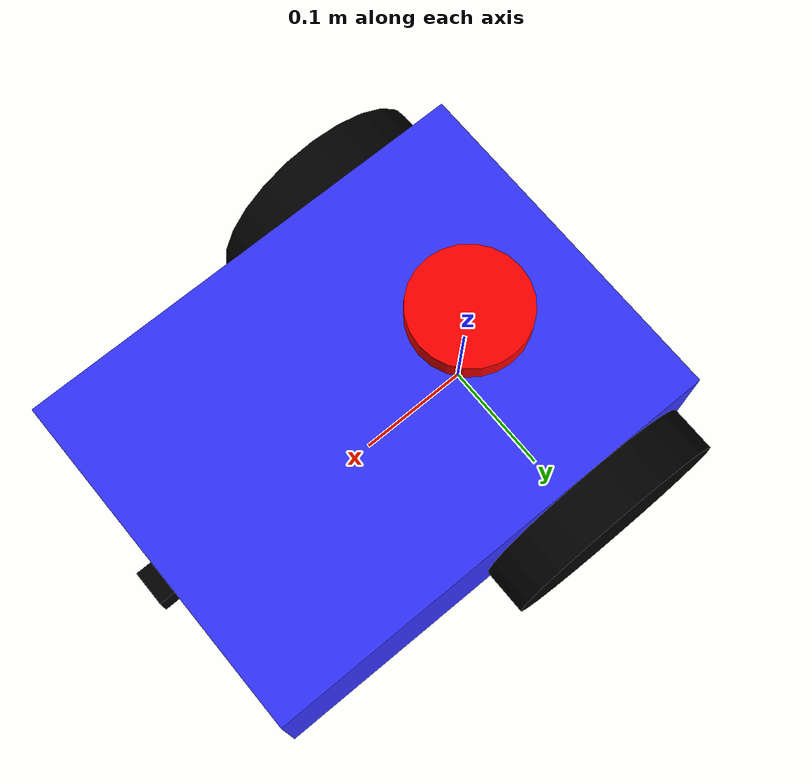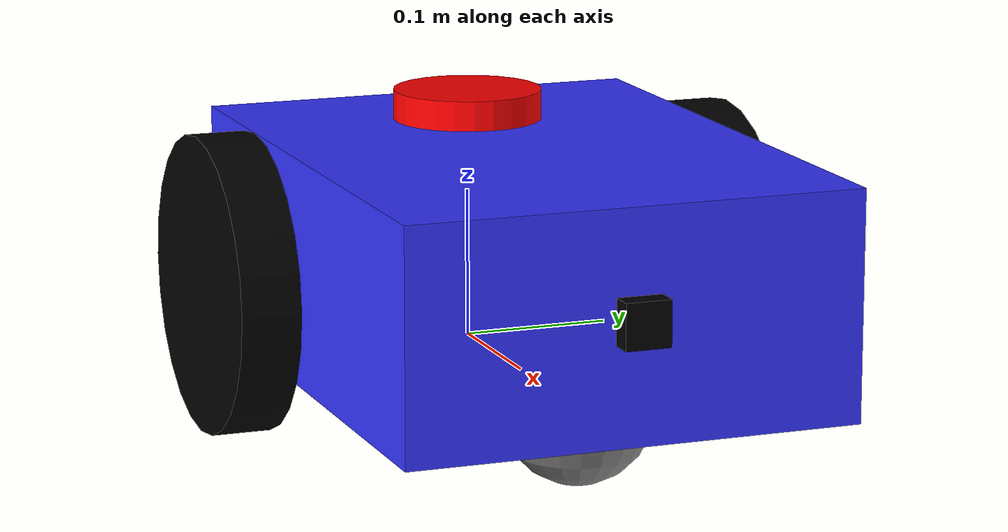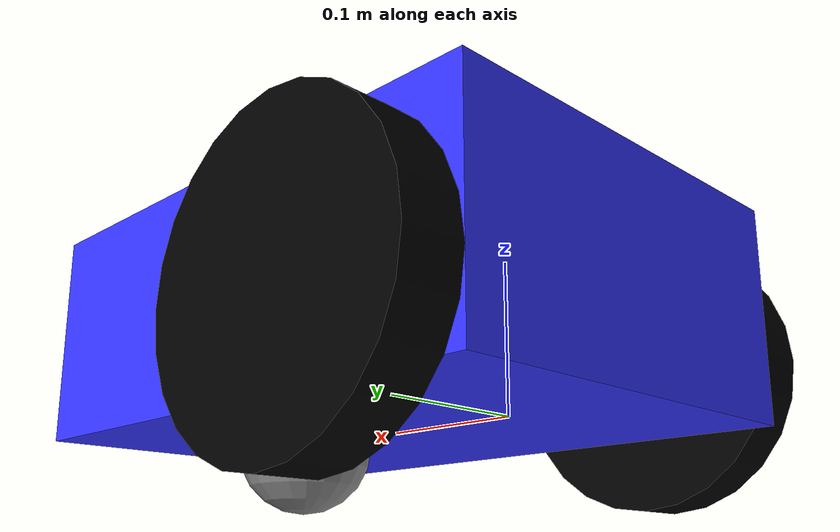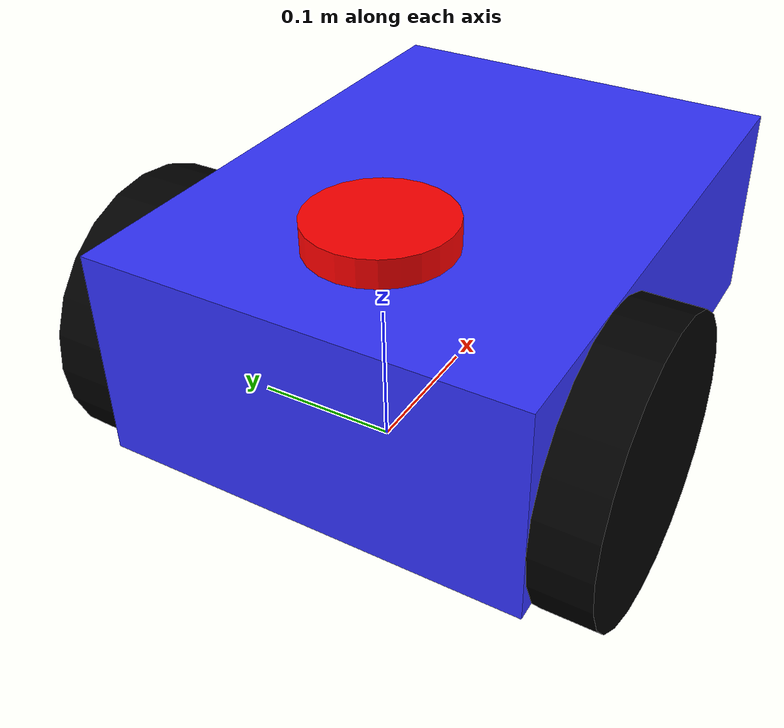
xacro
<?xml version="1.0"?>
<robot xmlns:xacro="http://www.ros.org/wiki/xacro" name="robot_2wd">

  <!-- 1. PEMBOLEHUBAH (PROPERTIES) DIMENSI - DITAKRIFKAN DAHULU -->
  <xacro:property name="chassis_length" value="0.4"/>
  <xacro:property name="chassis_width" value="0.3"/>
  <xacro:property name="chassis_height" value="0.15"/>
  <xacro:property name="wheel_radius" value="0.1"/>
  <xacro:property name="wheel_length" value="0.04"/>
  <xacro:property name="wheel_offset_x" value="0.1"/>
  <xacro:property name="wheel_offset_y" value="0.17"/>
  <xacro:property name="wheel_offset_z" value="0.05"/>

  <!-- 2. MENGIMPORT FAIL MAKRO LAIN - SELEPAS PROPERTIES -->
  <xacro:include filename="inertial_macros.xacro" />
  <xacro:include filename="gazebo.xacro" />
  <xacro:include filename="lidar.xacro" />
  <xacro:include filename="camera.xacro" />

  <!-- 3. BASE LINK (Titik Rujukan Pusat Robot) -->
  <link name="base_link">
    <xacro:inertial_sphere mass="0.001" radius="0.001">
      <origin xyz="0 0 0" rpy="0 0 0"/>
    </xacro:inertial_sphere>
  </link>

  <!-- 4. CHASSIS LINK (Badan Utama Robot) -->
  <joint name="chassis_joint" type="fixed">
    <parent link="base_link"/>
    <child link="chassis"/>
    <origin xyz="-0.10 0 0"/>
  </joint>

  <link name="chassis">
    <visual>
      <origin xyz="${chassis_length/2} 0 ${chassis_height/2}" rpy="0 0 0"/>
      <geometry>
        <box size="${chassis_length} ${chassis_width} ${chassis_height}"/>
      </geometry>
      <material name="blue">
        <color rgba="0.2 0.2 1.0 1.0"/>
      </material>
    </visual>
    <collision>
      <origin xyz="${chassis_length/2} 0 ${chassis_height/2}" rpy="0 0 0"/>
      <geometry>
        <box size="${chassis_length} ${chassis_width} ${chassis_height}"/>
      </geometry>
    </collision>
    <xacro:inertial_box mass="2.5" x="${chassis_length}" y="${chassis_width}" z="${chassis_height}">
      <origin xyz="${chassis_length/2} 0 ${chassis_height/2}" rpy="0 0 0"/>
    </xacro:inertial_box>
  </link>

  <!-- 5. MAKRO UNTUK RODA MEMANDU (KIRI & KANAN) -->
  <xacro:macro name="wheel" params="prefix y_reflect">
    <joint name="${prefix}_wheel_joint" type="continuous">
      <parent link="chassis"/>
      <child link="${prefix}_wheel"/>
      <!-- 🎯 Menetapkan offset z ke 0.05m dan putaran -90 darjah pada paksi X -->
      <origin xyz="${wheel_offset_x} ${y_reflect * wheel_offset_y} ${wheel_offset_z}" rpy="-${pi/2} 0 0"/>
      <axis xyz="0 0 1"/>
    </joint>

    <link name="${prefix}_wheel">
      <visual>
        <geometry>
          <cylinder radius="${wheel_radius}" length="${wheel_length}"/>
        </geometry>
        <material name="black">
          <color rgba="0.0 0.0 0.0 1.0"/>
        </material>
      </visual>
      <collision>
        <geometry>
          <cylinder radius="${wheel_radius}" length="${wheel_length}"/>
        </geometry>
      </collision>
      <xacro:inertial_cylinder mass="0.5" length="${wheel_length}" radius="${wheel_radius}">
        <origin xyz="0 0 0" rpy="0 0 0"/>
      </xacro:inertial_cylinder>
    </link>
  </xacro:macro>

  <xacro:wheel prefix="left" y_reflect="1" />
  <xacro:wheel prefix="right" y_reflect="-1" />

  <!-- 6. CASTER WHEEL (Roda Pasif Penstabil) -->
  <joint name="caster_wheel_joint" type="fixed">
    <parent link="chassis"/>
    <child link="caster_wheel"/>
    <!-- 🎯 Menyelaraskan origin z caster wheel supaya seimbang dengan roda utama -->
    <origin xyz="0.30 0 0" rpy="0 0 0"/>
  </joint>

  <link name="caster_wheel">
    <visual>
      <geometry>
        <sphere radius="0.05"/>
      </geometry>
      <material name="grey">
        <color rgba="0.5 0.5 0.5 1.0"/>
      </material>
    </visual>
    <collision>
      <geometry>
        <sphere radius="0.05"/>
      </geometry>
    </collision>
    <xacro:inertial_sphere mass="0.1" radius="0.05">
      <origin xyz="0 0 0" rpy="0 0 0"/>
    </xacro:inertial_sphere>
  </link>

</robot>

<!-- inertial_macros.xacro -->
<robot xmlns:xacro="http://www.ros.org/wiki/xacro">

  <!-- Makro Inersia Sfera -->
  <xacro:macro name="inertial_sphere" params="mass radius *origin">
    <inertial>
      <xacro:insert_block name="origin"/>
      <mass value="${mass}" />
      <inertia ixx="${(2/5) * mass * radius * radius}" ixy="0.0" ixz="0.0"
               iyy="${(2/5) * mass * radius * radius}" iyz="0.0"
               izz="${(2/5) * mass * radius * radius}" />
    </inertial>
  </xacro:macro>

  <!-- Makro Inersia Kotak (Chassis) -->
  <xacro:macro name="inertial_box" params="mass x y z *origin">
    <inertial>
      <xacro:insert_block name="origin"/>
      <mass value="${mass}" />
      <inertia ixx="${(1/12) * mass * (y*y + z*z)}" ixy="0.0" ixz="0.0"
               iyy="${(1/12) * mass * (x*x + z*z)}" iyz="0.0"
               izz="${(1/12) * mass * (x*x + y*y)}" />
    </inertial>
  </xacro:macro>

  <!-- Makro Inersia Silinder (Roda/Lidar) -->
  <xacro:macro name="inertial_cylinder" params="mass length radius *origin">
    <inertial>
      <xacro:insert_block name="origin"/>
      <mass value="${mass}" />
      <inertia ixx="${(1/12) * mass * (3*radius*radius + length*length)}" ixy="0.0" ixz="0.0"
               iyy="${(1/12) * mass * (3*radius*radius + length*length)}" iyz="0.0"
               izz="${(1/2) * mass * radius * radius}" />
    </inertial>
  </xacro:macro>

</robot>

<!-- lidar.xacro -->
<robot xmlns:xacro="http://www.ros.org/wiki/xacro">

  <!-- 1. SENDI LIDAR (Diletakkan tepat di atas chassis) -->
  <joint name="laser_joint" type="fixed">
    <parent link="chassis"/>
    <child link="laser_frame"/>
    <origin xyz="0.10 0 ${chassis_height}" rpy="0 0 0"/>
  </joint>

  <!-- 2. STRUKTUR FIZIKAL LIDAR (Bentuk Silinder Merah) -->
  <link name="laser_frame">
    <visual>
      <geometry>
        <cylinder radius="0.05" length="0.04"/>
      </geometry>
      <material name="red">
        <color rgba="1.0 0.0 0.0 1.0"/>
      </material>
    </visual>
    <collision>
      <geometry>
        <cylinder radius="0.05" length="0.04"/>
      </geometry>
    </collision>
    <xacro:inertial_cylinder mass="0.1" length="0.04" radius="0.05">
      <origin xyz="0 0 0" rpy="0 0 0"/>
    </xacro:inertial_cylinder>
  </link>

  <!-- 3. SIMULASI SENSOR GAZEBO HARMONIC -->
  <gazebo reference="laser_frame">
    <sensor name="gpu_lidar" type="gpu_lidar">
      <update_rate>10</update_rate>
      <topic>/scan</topic>
      <gz_frame_id>laser_frame</gz_frame_id>
      <lidar>
        <scan>
          <horizontal>
            <samples>360</samples>
            <resolution>1</resolution>
            <min_angle>-3.14159</min_angle>
            <max_angle>3.14159</max_angle>
          </horizontal>
        </scan>
        <range>
          <min>0.15</min>
          <max>12.0</max>
        </range>
      </lidar>
      <always_on>true</always_on>
      <visualize>true</visualize>
    </sensor>
  </gazebo>

</robot>

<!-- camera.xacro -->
<robot xmlns:xacro="http://www.ros.org/wiki/xacro">

  <!-- 1. SENDI KAMERA (Diikat pada hadapan Chassis) -->
  <joint name="camera_joint" type="fixed">
    <parent link="chassis"/>
    <child link="camera_link"/>
    <origin xyz="0.40 0 0.08" rpy="0 0 0"/>
  </joint>

  <!-- 2. STRUKTUR FIZIKAL KAMERA (Kotak Hitam Kecil) -->
  <link name="camera_link">
    <visual>
      <geometry>
        <box size="0.03 0.03 0.03"/>
      </geometry>
      <material name="black">
        <color rgba="0.0 0.0 0.0 1.0"/>
      </material>
    </visual>
    <collision>
      <geometry>
        <box size="0.03 0.03 0.03"/>
      </geometry>
    </collision>
    <xacro:inertial_box mass="0.05" x="0.03" y="0.03" z="0.03">
      <origin xyz="0 0 0" rpy="0 0 0"/>
    </xacro:inertial_box>
  </link>

</robot>
